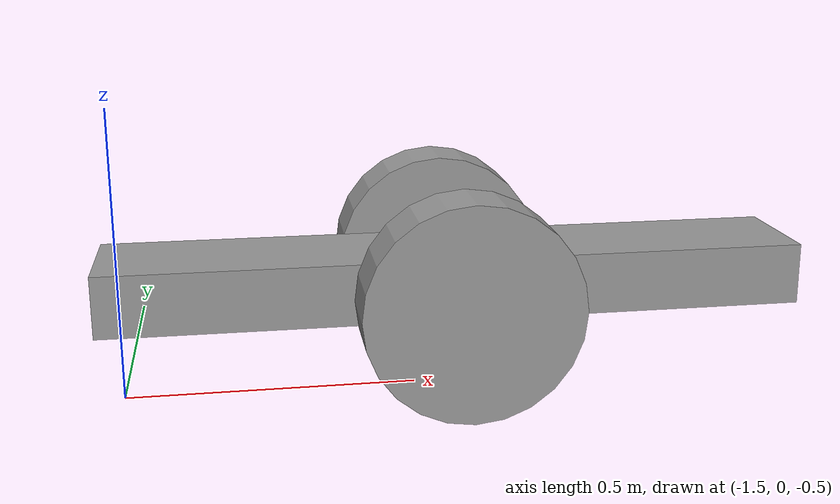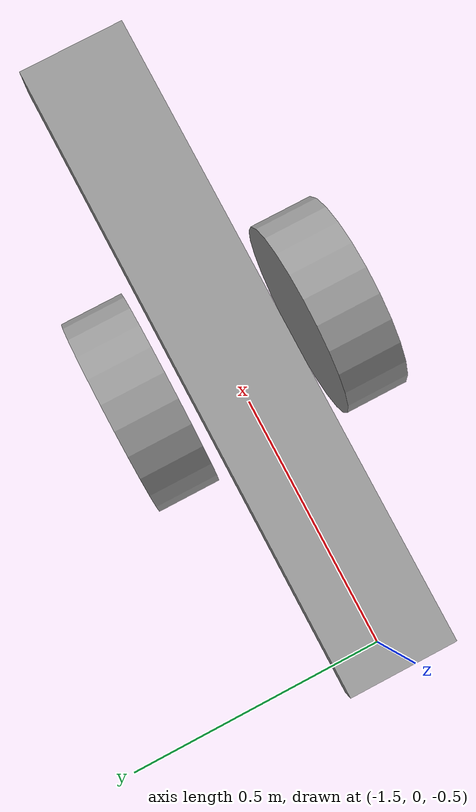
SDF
<?xml version="1.0" ?>
<sdf version="1.5">
  <world name="default">
    <!-- A global light source -->
    <include>
      <uri>model://sun</uri>
    </include>
    <!-- A ground plane -->
    <include>
      <uri>model://ground_plane</uri>
    </include>
    <include>
      <uri>model://diffy</uri>
    </include>
  </world>
</sdf>

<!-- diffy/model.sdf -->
<sdf version='1.6'>
  <model name='diffy'>
    <plugin name='diff_drive' filename='libgazebo_ros_diff_drive.so'>
<!-- 'libdiffdrive_plugin.so'> -->
      <alwaysOn>true</alwaysOn>
      <updateRate>100</updateRate>
      <leftJoint>joint_0</leftJoint>
      <rightJoint>joint_1</rightJoint>
      <wheelSeparation>0.5380</wheelSeparation>
      <wheelDiameter>0.2410</wheelDiameter>
      <torque>20</torque>
      <commandTopic>cmd_vel</commandTopic>
      <odometryTopic>odom</odometryTopic>
      <odometryFrame>odom</odometryFrame>
      <robotBaseFrame>base_footprint</robotBaseFrame>

      <!-- missing values-->
      <rosDebugLevel>na</rosDebugLevel>
      <publishWheelTF>false</publishWheelTF>
      <publishWheelJointState>false</publishWheelJointState>
      <wheelAcceleration>0.1</wheelAcceleration>
      <wheelTorque>5</wheelTorque>
      <odometrySource>world</odometrySource>
      <publishTf>1</publishTf>

    </plugin>
    <link name='base'>
      <inertial>
        <mass>0.52903</mass>
        <inertia>
          <ixx>0.0564244</ixx>
          <ixy>0</ixy>
          <ixz>0</ixz>
          <iyy>0.0564244</iyy>
          <iyz>0</iyz>
          <izz>0.0881719</izz>
        </inertia>
        <pose frame=''>0 0 0 0 -0 0</pose>
      </inertial>
      <self_collide>0</self_collide>
      <enable_wind>0</enable_wind>
      <kinematic>0</kinematic>
      <gravity>1</gravity>
      <pose frame=''>-0.934723 0 -0.304766 0 -0 0</pose>
      <visual name='visual'>
        <geometry>
          <box>
            <size>1.198371 0.198371 0.104943</size>
          </box>
        </geometry>
        <material>
          <script>
            <name>Gazebo/Grey</name>
            <uri>file://media/materials/scripts/gazebo.material</uri>
          </script>
          <ambient>0.3 0.3 0.3 1</ambient>
          <diffuse>0.7 0.7 0.7 1</diffuse>
          <specular>0.01 0.01 0.01 1</specular>
          <emissive>0 0 0 1</emissive>
        </material>
        <pose frame=''>0 0 0 0 -0 0</pose>
        <cast_shadows>1</cast_shadows>
        <transparency>0</transparency>
      </visual>
      <collision name='collision'>
        <laser_retro>0</laser_retro>
        <max_contacts>10</max_contacts>
        <pose frame=''>0 0 0 0 -0 0</pose>
        <geometry>
          <box>
            <size>0.198371 0.198371 0.104943</size>
          </box>
        </geometry>
        <surface>
          <friction>
            <ode>
              <mu>1</mu>
              <mu2>1</mu2>
              <fdir1>0 0 0</fdir1>
              <slip1>0</slip1>
              <slip2>0</slip2>
            </ode>
            <torsional>
              <coefficient>1</coefficient>
              <patch_radius>0</patch_radius>
              <surface_radius>0</surface_radius>
              <use_patch_radius>1</use_patch_radius>
              <ode>
                <slip>0</slip>
              </ode>
            </torsional>
          </friction>
          <bounce>
            <restitution_coefficient>0</restitution_coefficient>
            <threshold>1e+06</threshold>
          </bounce>
          <contact>
            <collide_without_contact>0</collide_without_contact>
            <collide_without_contact_bitmask>1</collide_without_contact_bitmask>
            <collide_bitmask>1</collide_bitmask>
            <ode>
              <soft_cfm>0</soft_cfm>
              <soft_erp>0.2</soft_erp>
              <kp>1e+13</kp>
              <kd>1</kd>
              <max_vel>0.01</max_vel>
              <min_depth>0</min_depth>
            </ode>
            <bullet>
              <split_impulse>1</split_impulse>
              <split_impulse_penetration_threshold>-0.01</split_impulse_penetration_threshold>
              <soft_cfm>0</soft_cfm>
              <soft_erp>0.2</soft_erp>
              <kp>1e+13</kp>
              <kd>1</kd>
            </bullet>
          </contact>
        </surface>
      </collision>
    </link>
    <link name='wheel_0'>
      <inertial>
        <mass>0.0148235</mass>
        <inertia>
          <ixx>0.000136452</ixx>
          <ixy>0</ixy>
          <ixz>0</ixz>
          <iyy>0.000136452</iyy>
          <iyz>0</iyz>
          <izz>0.000240743</izz>
        </inertia>
        <pose frame=''>0 0 0 0 -0 0</pose>
      </inertial>
      <pose frame=''>-0.934723 0.178751 -0.304766 -1.5708 0 0</pose>
      <visual name='visual'>
        <pose frame=''>0 0 0 0 -0 0</pose>
        <geometry>
          <cylinder>
            <radius>0.180226</radius>
            <length>0.114092</length>
          </cylinder>
        </geometry>
        <material>
          <lighting>1</lighting>
          <script>
            <uri>file://media/materials/scripts/gazebo.material</uri>
            <name>Gazebo/Grey</name>
          </script>
          <ambient>0.3 0.3 0.3 1</ambient>
          <diffuse>0.7 0.7 0.7 1</diffuse>
          <specular>0.01 0.01 0.01 1</specular>
          <emissive>0 0 0 1</emissive>
        </material>
        <cast_shadows>1</cast_shadows>
        <transparency>0</transparency>
      </visual>
      <collision name='collision'>
        <laser_retro>0</laser_retro>
        <max_contacts>10</max_contacts>
        <pose frame=''>0 0 0 0 -0 0</pose>
        <geometry>
          <cylinder>
            <radius>0.180226</radius>
            <length>0.114092</length>
          </cylinder>
        </geometry>
        <surface>
          <friction>
            <ode>
              <mu>1</mu>
              <mu2>1</mu2>
              <fdir1>0 0 0</fdir1>
              <slip1>0</slip1>
              <slip2>0</slip2>
            </ode>
            <torsional>
              <coefficient>1</coefficient>
              <patch_radius>0</patch_radius>
              <surface_radius>0</surface_radius>
              <use_patch_radius>1</use_patch_radius>
              <ode>
                <slip>0</slip>
              </ode>
            </torsional>
          </friction>
          <bounce>
            <restitution_coefficient>0</restitution_coefficient>
            <threshold>1e+06</threshold>
          </bounce>
          <contact>
            <collide_without_contact>0</collide_without_contact>
            <collide_without_contact_bitmask>1</collide_without_contact_bitmask>
            <collide_bitmask>1</collide_bitmask>
            <ode>
              <soft_cfm>0</soft_cfm>
              <soft_erp>0.2</soft_erp>
              <kp>1e+13</kp>
              <kd>1</kd>
              <max_vel>0.01</max_vel>
              <min_depth>0</min_depth>
            </ode>
            <bullet>
              <split_impulse>1</split_impulse>
              <split_impulse_penetration_threshold>-0.01</split_impulse_penetration_threshold>
              <soft_cfm>0</soft_cfm>
              <soft_erp>0.2</soft_erp>
              <kp>1e+13</kp>
              <kd>1</kd>
            </bullet>
          </contact>
        </surface>
      </collision>
    </link>
    <link name='wheel_1'>
      <inertial>
        <mass>0.0148235</mass>
        <inertia>
          <ixx>0.000136452</ixx>
          <ixy>0</ixy>
          <ixz>0</ixz>
          <iyy>0.000136452</iyy>
          <iyz>0</iyz>
          <izz>0.000240743</izz>
        </inertia>
        <pose frame=''>0 0 0 0 -0 0</pose>
      </inertial>
      <pose frame=''>-0.934723 -0.183413 -0.304766 -1.5708 0 0</pose>
      <visual name='visual'>
        <pose frame=''>0 0 0 0 -0 0</pose>
        <geometry>
          <cylinder>
            <radius>0.180226</radius>
            <length>0.114092</length>
          </cylinder>
        </geometry>
        <material>
          <lighting>1</lighting>
          <script>
            <uri>file://media/materials/scripts/gazebo.material</uri>
            <name>Gazebo/Grey</name>
          </script>
          <ambient>0.3 0.3 0.3 1</ambient>
          <diffuse>0.7 0.7 0.7 1</diffuse>
          <specular>0.01 0.01 0.01 1</specular>
          <emissive>0 0 0 1</emissive>
          <shader type='pixel'/>
        </material>
        <cast_shadows>1</cast_shadows>
        <transparency>0</transparency>
      </visual>
      <collision name='collision'>
        <laser_retro>0</laser_retro>
        <max_contacts>10</max_contacts>
        <pose frame=''>0 0 0 0 -0 0</pose>
        <geometry>
          <cylinder>
            <radius>0.180226</radius>
            <length>0.114092</length>
          </cylinder>
        </geometry>
        <surface>
          <friction>
            <ode>
              <mu>1</mu>
              <mu2>1</mu2>
              <fdir1>0 0 0</fdir1>
              <slip1>0</slip1>
              <slip2>0</slip2>
            </ode>
            <torsional>
              <coefficient>1</coefficient>
              <patch_radius>0</patch_radius>
              <surface_radius>0</surface_radius>
              <use_patch_radius>1</use_patch_radius>
              <ode>
                <slip>0</slip>
              </ode>
            </torsional>
          </friction>
          <bounce>
            <restitution_coefficient>0</restitution_coefficient>
            <threshold>1e+06</threshold>
          </bounce>
          <contact>
            <collide_without_contact>0</collide_without_contact>
            <collide_without_contact_bitmask>1</collide_without_contact_bitmask>
            <collide_bitmask>1</collide_bitmask>
            <ode>
              <soft_cfm>0</soft_cfm>
              <soft_erp>0.2</soft_erp>
              <kp>1e+13</kp>
              <kd>1</kd>
              <max_vel>0.01</max_vel>
              <min_depth>0</min_depth>
            </ode>
            <bullet>
              <split_impulse>1</split_impulse>
              <split_impulse_penetration_threshold>-0.01</split_impulse_penetration_threshold>
              <soft_cfm>0</soft_cfm>
              <soft_erp>0.2</soft_erp>
              <kp>1e+13</kp>
              <kd>1</kd>
            </bullet>
          </contact>
        </surface>
      </collision>
    </link>
    <joint name='joint_0' type='revolute'>
      <parent>base</parent>
      <child>wheel_0</child>
      <pose frame=''>0 0 0 0 -0 0</pose>
      <axis>
        <xyz>0 0 1</xyz>
        <use_parent_model_frame>0</use_parent_model_frame>
        <limit>
          <lower>-1.79769e+308</lower>
          <upper>1.79769e+308</upper>
          <effort>-1</effort>
          <velocity>-1</velocity>
        </limit>
        <dynamics>
          <spring_reference>0</spring_reference>
          <spring_stiffness>0</spring_stiffness>
          <damping>0</damping>
        </dynamics>
      </axis>
      <physics>
        <ode>
          <limit>
            <cfm>0</cfm>
            <erp>0.2</erp>
          </limit>
          <suspension>
            <cfm>0</cfm>
            <erp>0.2</erp>
          </suspension>
        </ode>
      </physics>
    </joint>
    <joint name='joint_1' type='revolute'>
      <parent>base</parent>
      <child>wheel_1</child>
      <pose frame=''>0 0 0 0 -0 0</pose>
      <axis>
        <xyz>0 0 1</xyz>
        <use_parent_model_frame>0</use_parent_model_frame>
        <limit>
          <lower>-1.79769e+308</lower>
          <upper>1.79769e+308</upper>
          <effort>-1</effort>
          <velocity>-1</velocity>
        </limit>
        <dynamics>
          <spring_reference>0</spring_reference>
          <spring_stiffness>0</spring_stiffness>
          <damping>0</damping>
        </dynamics>
      </axis>
      <physics>
        <ode>
          <limit>
            <cfm>0</cfm>
            <erp>0.2</erp>
          </limit>
          <suspension>
            <cfm>0</cfm>
            <erp>0.2</erp>
          </suspension>
        </ode>
      </physics>
    </joint>
    <static>0</static>
    <allow_auto_disable>1</allow_auto_disable>
  </model>
</sdf>
